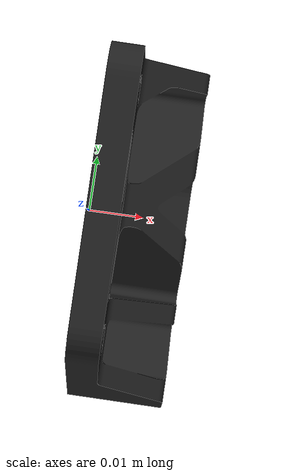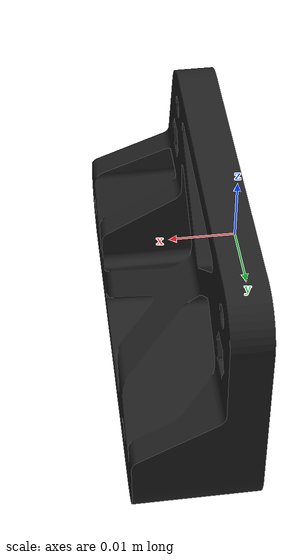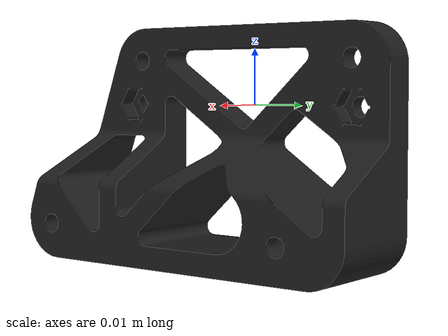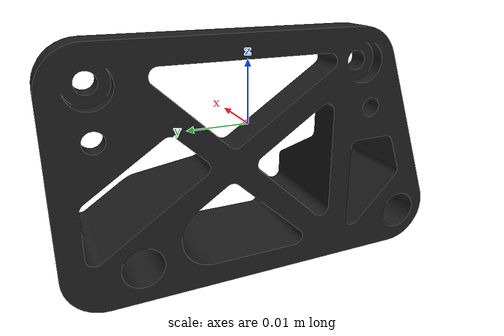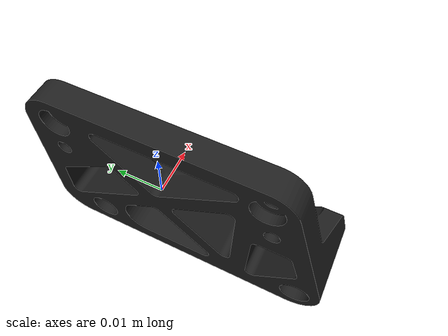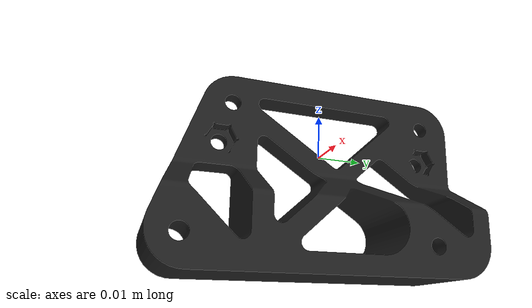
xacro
<?xml version="1.0"?>
<robot name="realsense_mount" xmlns:xacro="http://www.ros.org/wiki/xacro">

  <xacro:property name="mass" value="0.014" />

  <link name="realsense_mount_link">
      <visual>
          <geometry>
              <mesh filename="package://common_gazebo_models/meshes/realsense_mount/realsense_mount.dae"/>
          </geometry>
      </visual>
      <collision>
          <origin xyz="0.00965 -0.003639 -0.007" rpy="0 0 0"/>
          <geometry>
              <box size="0.0193 0.0683 0.042"/>
          </geometry>
      </collision>
  </link>

  <gazebo reference="realsense_mount_link">
    <material>Gazebo/Black</material>
  </gazebo>

  <link name="d435_mount_link" />
  <link name="t265_mount_link" />

  <joint name="mount_to_d435_joint" type="fixed">
      <parent link="realsense_mount_link" />
      <child link="d435_mount_link" />
      <origin xyz="0.006 0.000997 0.007955" rpy="0 0 0"/>
  </joint>

  <joint name="mount_to_t265_joint" type="fixed">
      <parent link="realsense_mount_link" />
      <child link="t265_mount_link" />
      <origin xyz="0.0193 -0.007104 -0.02175" rpy="0 0 0"/>
  </joint>

</robot>
